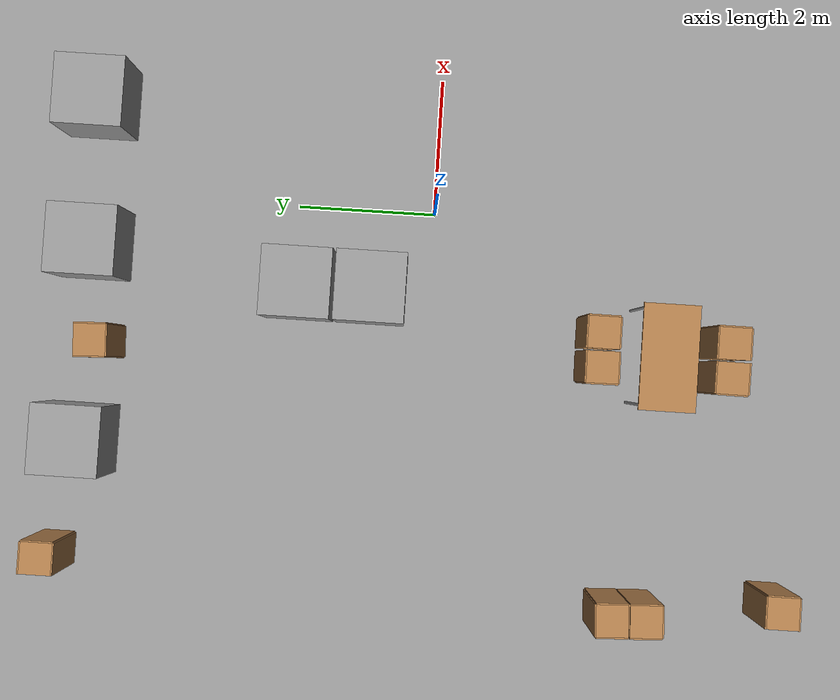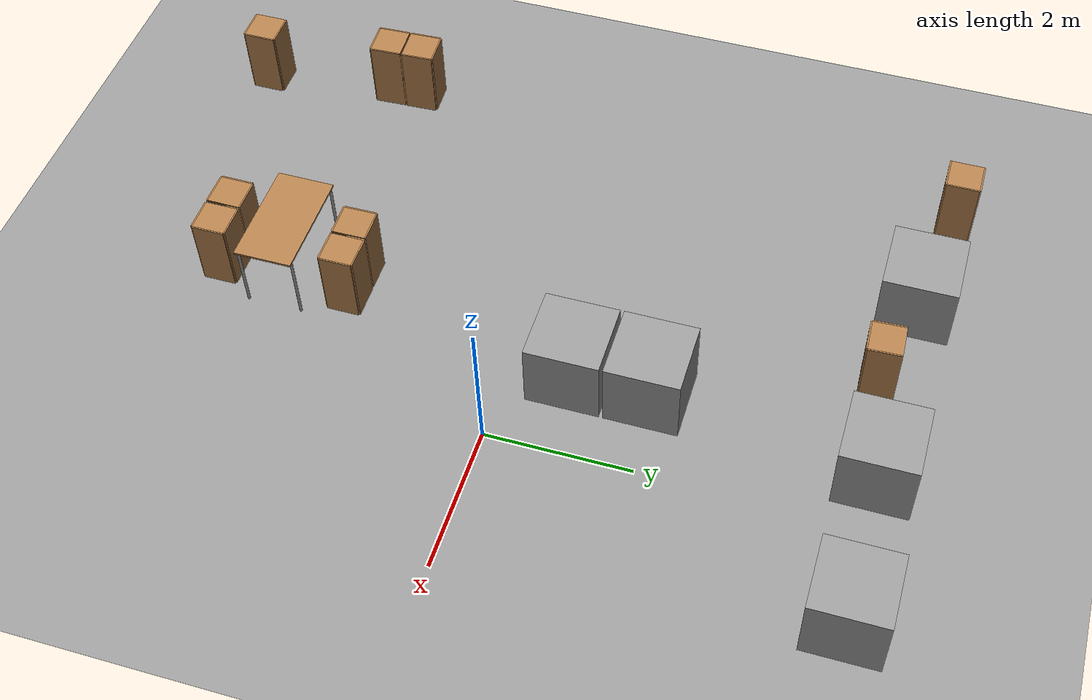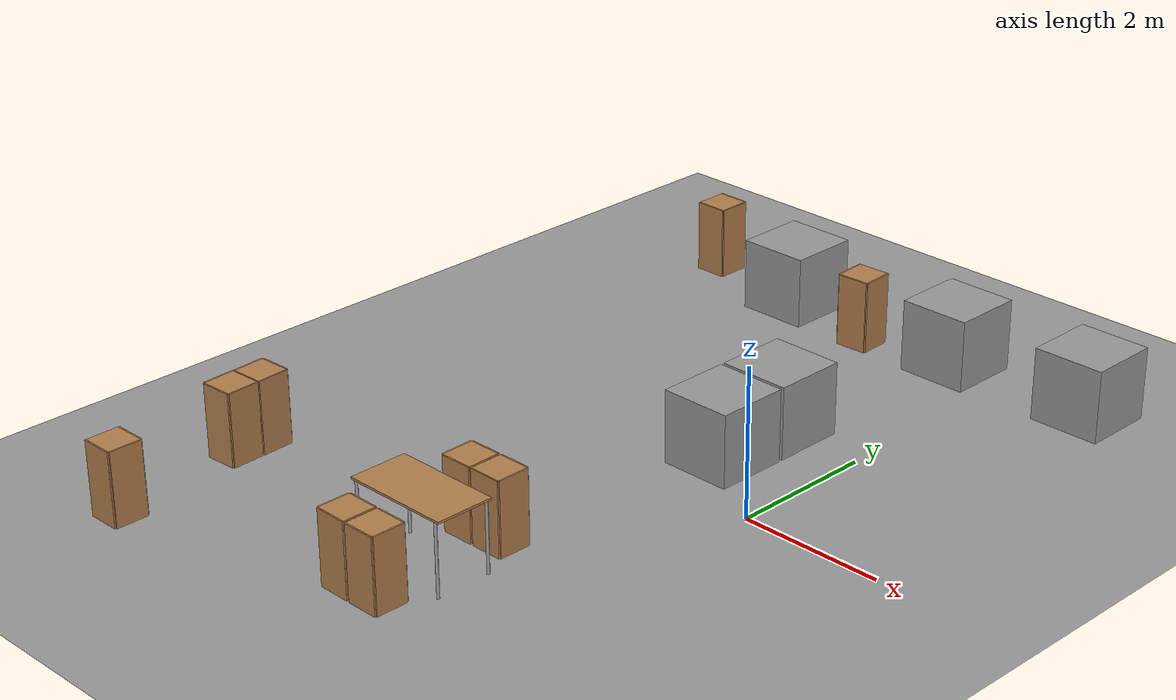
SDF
<sdf version="1.4">
 <world name="default">
  <model name="ground_plane_0">
   <static>1</static>
   <link name="link">
    <collision name="collision">
     <geometry><plane><normal>0 0 1</normal><size>100 100</size></plane></geometry>
     <surface><friction><ode><mu>100</mu><mu2>50</mu2></ode></friction></surface>
    </collision>
    <visual name="visual">
     <cast_shadows>0</cast_shadows>
     <geometry><plane><normal>0 0 1</normal><size>100 100</size></plane></geometry>
     <material>
      <script><uri>file://media/materials/scripts/gazebo.material</uri><name>Gazebo/Grey</name></script>
     </material>
    </visual>
    <velocity_decay><linear>0</linear><angular>0</angular></velocity_decay>
   </link>
   <pose>0.497681 0 0 0 -0 0</pose>
  </model>
  <model name="cabinet_0">
   <static>1</static>
   <link name="cabinet_bottom_plate">
    <inertial>
     <pose>0 0 -1 0 -0 0</pose>
     <inertia><ixx>2.05</ixx><ixy>0</ixy><ixz>0</ixz><iyy>2.05</iyy><iyz>0</iyz><izz>2.05</izz></inertia>
     <mass>25</mass>
    </inertial>
    <collision name="cabinet_bottom_plate_geom">
     <pose>0 0 0.01 0 -0 0</pose>
     <geometry><box><size>0.45 0.45 0.02</size></box></geometry>
    </collision>
    <visual name="cabinet_bottom_plate_geom_visual">
     <pose>0 0 0.01 0 -0 0</pose>
     <geometry><box><size>0.45 0.45 0.02</size></box></geometry>
     <material>
      <script><uri>file://media/materials/scripts/gazebo.material</uri><name>Gazebo/Wood</name></script>
     </material>
    </visual>
    <collision name="cabinet_bottom_plate_geom_cabinet_back_plate">
     <pose>0.235 0 0.51 0 -0 0</pose>
     <geometry><box><size>0.02 0.45 1.02</size></box></geometry>
    </collision>
    <visual name="cabinet_bottom_plate_geom_cabinet_back_plate_visual">
     <pose>0.235 0 0.51 0 -0 0</pose>
     <geometry><box><size>0.02 0.45 1.02</size></box></geometry>
     <material>
      <script><uri>file://media/materials/scripts/gazebo.material</uri><name>Gazebo/Wood</name></script>
     </material>
    </visual>
    <collision name="cabinet_bottom_plate_geom_cabinet_left_plate">
     <pose>0 0.235 0.51 0 -0 0</pose>
     <geometry><box><size>0.45 0.02 1.02</size></box></geometry>
    </collision>
    <visual name="cabinet_bottom_plate_geom_cabinet_left_plate_visual">
     <pose>0 0.235 0.51 0 -0 0</pose>
     <geometry><box><size>0.45 0.02 1.02</size></box></geometry>
     <material>
      <script><uri>file://media/materials/scripts/gazebo.material</uri><name>Gazebo/Wood</name></script>
     </material>
    </visual>
    <collision name="cabinet_bottom_plate_geom_cabinet_middle_plate">
     <pose>0 0 0.51 0 -0 0</pose>
     <geometry><box><size>0.45 0.45 0.02</size></box></geometry>
    </collision>
    <visual name="cabinet_bottom_plate_geom_cabinet_middle_plate_visual">
     <pose>0 0 0.51 0 -0 0</pose>
     <geometry><box><size>0.45 0.45 0.02</size></box></geometry>
     <material>
      <script><uri>file://media/materials/scripts/gazebo.material</uri><name>Gazebo/Wood</name></script>
     </material>
    </visual>
    <collision name="cabinet_bottom_plate_geom_cabinet_right_plate">
     <pose>0 -0.235 0.51 0 -0 0</pose>
     <geometry><box><size>0.45 0.02 1.02</size></box></geometry>
    </collision>
    <visual name="cabinet_bottom_plate_geom_cabinet_right_plate_visual">
     <pose>0 -0.235 0.51 0 -0 0</pose>
     <geometry><box><size>0.45 0.02 1.02</size></box></geometry>
     <material>
      <script><uri>file://media/materials/scripts/gazebo.material</uri><name>Gazebo/Wood</name></script>
     </material>
    </visual>
    <collision name="cabinet_bottom_plate_geom_cabinet_top_plate">
     <pose>0 0 1.01 0 -0 0</pose>
     <geometry><box><size>0.45 0.45 0.02</size></box></geometry>
    </collision>
    <visual name="cabinet_bottom_plate_geom_cabinet_top_plate_visual">
     <pose>0 0 1.01 0 -0 0</pose>
     <geometry><box><size>0.45 0.45 0.02</size></box></geometry>
     <material>
      <script><uri>file://media/materials/scripts/gazebo.material</uri><name>Gazebo/Wood</name></script>
     </material>
    </visual>
    <velocity_decay><linear>0</linear><angular>0</angular></velocity_decay>
   </link>
   <pose>-5.34383 -5.1572 0 0 -0 0</pose>
  </model>
  <model name="cabinet_1">
   <static>1</static>
   <link name="cabinet_bottom_plate">
    <inertial>
     <pose>0 0 -1 0 -0 0</pose>
     <inertia><ixx>2.05</ixx><ixy>0</ixy><ixz>0</ixz><iyy>2.05</iyy><iyz>0</iyz><izz>2.05</izz></inertia>
     <mass>25</mass>
    </inertial>
    <collision name="cabinet_bottom_plate_geom">
     <pose>0 0 0.01 0 -0 0</pose>
     <geometry><box><size>0.45 0.45 0.02</size></box></geometry>
    </collision>
    <visual name="cabinet_bottom_plate_geom_visual">
     <pose>0 0 0.01 0 -0 0</pose>
     <geometry><box><size>0.45 0.45 0.02</size></box></geometry>
     <material>
      <script><uri>file://media/materials/scripts/gazebo.material</uri><name>Gazebo/Wood</name></script>
     </material>
    </visual>
    <collision name="cabinet_bottom_plate_geom_cabinet_back_plate">
     <pose>0.235 0 0.51 0 -0 0</pose>
     <geometry><box><size>0.02 0.45 1.02</size></box></geometry>
    </collision>
    <visual name="cabinet_bottom_plate_geom_cabinet_back_plate_visual">
     <pose>0.235 0 0.51 0 -0 0</pose>
     <geometry><box><size>0.02 0.45 1.02</size></box></geometry>
     <material>
      <script><uri>file://media/materials/scripts/gazebo.material</uri><name>Gazebo/Wood</name></script>
     </material>
    </visual>
    <collision name="cabinet_bottom_plate_geom_cabinet_left_plate">
     <pose>0 0.235 0.51 0 -0 0</pose>
     <geometry><box><size>0.45 0.02 1.02</size></box></geometry>
    </collision>
    <visual name="cabinet_bottom_plate_geom_cabinet_left_plate_visual">
     <pose>0 0.235 0.51 0 -0 0</pose>
     <geometry><box><size>0.45 0.02 1.02</size></box></geometry>
     <material>
      <script><uri>file://media/materials/scripts/gazebo.material</uri><name>Gazebo/Wood</name></script>
     </material>
    </visual>
    <collision name="cabinet_bottom_plate_geom_cabinet_middle_plate">
     <pose>0 0 0.51 0 -0 0</pose>
     <geometry><box><size>0.45 0.45 0.02</size></box></geometry>
    </collision>
    <visual name="cabinet_bottom_plate_geom_cabinet_middle_plate_visual">
     <pose>0 0 0.51 0 -0 0</pose>
     <geometry><box><size>0.45 0.45 0.02</size></box></geometry>
     <material>
      <script><uri>file://media/materials/scripts/gazebo.material</uri><name>Gazebo/Wood</name></script>
     </material>
    </visual>
    <collision name="cabinet_bottom_plate_geom_cabinet_right_plate">
     <pose>0 -0.235 0.51 0 -0 0</pose>
     <geometry><box><size>0.45 0.02 1.02</size></box></geometry>
    </collision>
    <visual name="cabinet_bottom_plate_geom_cabinet_right_plate_visual">
     <pose>0 -0.235 0.51 0 -0 0</pose>
     <geometry><box><size>0.45 0.02 1.02</size></box></geometry>
     <material>
      <script><uri>file://media/materials/scripts/gazebo.material</uri><name>Gazebo/Wood</name></script>
     </material>
    </visual>
    <collision name="cabinet_bottom_plate_geom_cabinet_top_plate">
     <pose>0 0 1.01 0 -0 0</pose>
     <geometry><box><size>0.45 0.45 0.02</size></box></geometry>
    </collision>
    <visual name="cabinet_bottom_plate_geom_cabinet_top_plate_visual">
     <pose>0 0 1.01 0 -0 0</pose>
     <geometry><box><size>0.45 0.45 0.02</size></box></geometry>
     <material>
      <script><uri>file://media/materials/scripts/gazebo.material</uri><name>Gazebo/Wood</name></script>
     </material>
    </visual>
    <velocity_decay><linear>0</linear><angular>0</angular></velocity_decay>
   </link>
   <pose>-5.57746 -3.27376 0 0 0 -1.5274</pose>
  </model>
  <model name="cabinet_2">
   <static>1</static>
   <link name="cabinet_bottom_plate">
    <inertial>
     <pose>0 0 -1 0 -0 0</pose>
     <inertia><ixx>2.05</ixx><ixy>0</ixy><ixz>0</ixz><iyy>2.05</iyy><iyz>0</iyz><izz>2.05</izz></inertia>
     <mass>25</mass>
    </inertial>
    <collision name="cabinet_bottom_plate_geom">
     <pose>0 0 0.01 0 -0 0</pose>
     <geometry><box><size>0.45 0.45 0.02</size></box></geometry>
    </collision>
    <visual name="cabinet_bottom_plate_geom_visual">
     <pose>0 0 0.01 0 -0 0</pose>
     <geometry><box><size>0.45 0.45 0.02</size></box></geometry>
     <material>
      <script><uri>file://media/materials/scripts/gazebo.material</uri><name>Gazebo/Wood</name></script>
     </material>
    </visual>
    <collision name="cabinet_bottom_plate_geom_cabinet_back_plate">
     <pose>0.235 0 0.51 0 -0 0</pose>
     <geometry><box><size>0.02 0.45 1.02</size></box></geometry>
    </collision>
    <visual name="cabinet_bottom_plate_geom_cabinet_back_plate_visual">
     <pose>0.235 0 0.51 0 -0 0</pose>
     <geometry><box><size>0.02 0.45 1.02</size></box></geometry>
     <material>
      <script><uri>file://media/materials/scripts/gazebo.material</uri><name>Gazebo/Wood</name></script>
     </material>
    </visual>
    <collision name="cabinet_bottom_plate_geom_cabinet_left_plate">
     <pose>0 0.235 0.51 0 -0 0</pose>
     <geometry><box><size>0.45 0.02 1.02</size></box></geometry>
    </collision>
    <visual name="cabinet_bottom_plate_geom_cabinet_left_plate_visual">
     <pose>0 0.235 0.51 0 -0 0</pose>
     <geometry><box><size>0.45 0.02 1.02</size></box></geometry>
     <material>
      <script><uri>file://media/materials/scripts/gazebo.material</uri><name>Gazebo/Wood</name></script>
     </material>
    </visual>
    <collision name="cabinet_bottom_plate_geom_cabinet_middle_plate">
     <pose>0 0 0.51 0 -0 0</pose>
     <geometry><box><size>0.45 0.45 0.02</size></box></geometry>
    </collision>
    <visual name="cabinet_bottom_plate_geom_cabinet_middle_plate_visual">
     <pose>0 0 0.51 0 -0 0</pose>
     <geometry><box><size>0.45 0.45 0.02</size></box></geometry>
     <material>
      <script><uri>file://media/materials/scripts/gazebo.material</uri><name>Gazebo/Wood</name></script>
     </material>
    </visual>
    <collision name="cabinet_bottom_plate_geom_cabinet_right_plate">
     <pose>0 -0.235 0.51 0 -0 0</pose>
     <geometry><box><size>0.45 0.02 1.02</size></box></geometry>
    </collision>
    <visual name="cabinet_bottom_plate_geom_cabinet_right_plate_visual">
     <pose>0 -0.235 0.51 0 -0 0</pose>
     <geometry><box><size>0.45 0.02 1.02</size></box></geometry>
     <material>
      <script><uri>file://media/materials/scripts/gazebo.material</uri><name>Gazebo/Wood</name></script>
     </material>
    </visual>
    <collision name="cabinet_bottom_plate_geom_cabinet_top_plate">
     <pose>0 0 1.01 0 -0 0</pose>
     <geometry><box><size>0.45 0.45 0.02</size></box></geometry>
    </collision>
    <visual name="cabinet_bottom_plate_geom_cabinet_top_plate_visual">
     <pose>0 0 1.01 0 -0 0</pose>
     <geometry><box><size>0.45 0.45 0.02</size></box></geometry>
     <material>
      <script><uri>file://media/materials/scripts/gazebo.material</uri><name>Gazebo/Wood</name></script>
     </material>
    </visual>
    <velocity_decay><linear>0</linear><angular>0</angular></velocity_decay>
   </link>
   <pose>-5.59482 -2.80227 0 0 -0 1.61682</pose>
  </model>
  <model name="cabinet_5">
   <static>1</static>
   <link name="cabinet_bottom_plate">
    <inertial>
     <pose>0 0 -1 0 -0 0</pose>
     <inertia><ixx>2.05</ixx><ixy>0</ixy><ixz>0</ixz><iyy>2.05</iyy><iyz>0</iyz><izz>2.05</izz></inertia>
     <mass>25</mass>
    </inertial>
    <collision name="cabinet_bottom_plate_geom">
     <pose>0 0 0.01 0 -0 0</pose>
     <geometry><box><size>0.45 0.45 0.02</size></box></geometry>
    </collision>
    <visual name="cabinet_bottom_plate_geom_visual">
     <pose>0 0 0.01 0 -0 0</pose>
     <geometry><box><size>0.45 0.45 0.02</size></box></geometry>
     <material>
      <script><uri>file://media/materials/scripts/gazebo.material</uri><name>Gazebo/Wood</name></script>
     </material>
    </visual>
    <collision name="cabinet_bottom_plate_geom_cabinet_back_plate">
     <pose>0.235 0 0.51 0 -0 0</pose>
     <geometry><box><size>0.02 0.45 1.02</size></box></geometry>
    </collision>
    <visual name="cabinet_bottom_plate_geom_cabinet_back_plate_visual">
     <pose>0.235 0 0.51 0 -0 0</pose>
     <geometry><box><size>0.02 0.45 1.02</size></box></geometry>
     <material>
      <script><uri>file://media/materials/scripts/gazebo.material</uri><name>Gazebo/Wood</name></script>
     </material>
    </visual>
    <collision name="cabinet_bottom_plate_geom_cabinet_left_plate">
     <pose>0 0.235 0.51 0 -0 0</pose>
     <geometry><box><size>0.45 0.02 1.02</size></box></geometry>
    </collision>
    <visual name="cabinet_bottom_plate_geom_cabinet_left_plate_visual">
     <pose>0 0.235 0.51 0 -0 0</pose>
     <geometry><box><size>0.45 0.02 1.02</size></box></geometry>
     <material>
      <script><uri>file://media/materials/scripts/gazebo.material</uri><name>Gazebo/Wood</name></script>
     </material>
    </visual>
    <collision name="cabinet_bottom_plate_geom_cabinet_middle_plate">
     <pose>0 0 0.51 0 -0 0</pose>
     <geometry><box><size>0.45 0.45 0.02</size></box></geometry>
    </collision>
    <visual name="cabinet_bottom_plate_geom_cabinet_middle_plate_visual">
     <pose>0 0 0.51 0 -0 0</pose>
     <geometry><box><size>0.45 0.45 0.02</size></box></geometry>
     <material>
      <script><uri>file://media/materials/scripts/gazebo.material</uri><name>Gazebo/Wood</name></script>
     </material>
    </visual>
    <collision name="cabinet_bottom_plate_geom_cabinet_right_plate">
     <pose>0 -0.235 0.51 0 -0 0</pose>
     <geometry><box><size>0.45 0.02 1.02</size></box></geometry>
    </collision>
    <visual name="cabinet_bottom_plate_geom_cabinet_right_plate_visual">
     <pose>0 -0.235 0.51 0 -0 0</pose>
     <geometry><box><size>0.45 0.02 1.02</size></box></geometry>
     <material>
      <script><uri>file://media/materials/scripts/gazebo.material</uri><name>Gazebo/Wood</name></script>
     </material>
    </visual>
    <collision name="cabinet_bottom_plate_geom_cabinet_top_plate">
     <pose>0 0 1.01 0 -0 0</pose>
     <geometry><box><size>0.45 0.45 0.02</size></box></geometry>
    </collision>
    <visual name="cabinet_bottom_plate_geom_cabinet_top_plate_visual">
     <pose>0 0 1.01 0 -0 0</pose>
     <geometry><box><size>0.45 0.45 0.02</size></box></geometry>
     <material>
      <script><uri>file://media/materials/scripts/gazebo.material</uri><name>Gazebo/Wood</name></script>
     </material>
    </visual>
    <velocity_decay><linear>0</linear><angular>0</angular></velocity_decay>
   </link>
   <pose>-2.13888 -4.27539 0 0 -0 3.13178</pose>
  </model>
  <model name="cabinet_6">
   <static>1</static>
   <link name="cabinet_bottom_plate">
    <inertial>
     <pose>0 0 -1 0 -0 0</pose>
     <inertia><ixx>2.05</ixx><ixy>0</ixy><ixz>0</ixz><iyy>2.05</iyy><iyz>0</iyz><izz>2.05</izz></inertia>
     <mass>25</mass>
    </inertial>
    <collision name="cabinet_bottom_plate_geom">
     <pose>0 0 0.01 0 -0 0</pose>
     <geometry><box><size>0.45 0.45 0.02</size></box></geometry>
    </collision>
    <visual name="cabinet_bottom_plate_geom_visual">
     <pose>0 0 0.01 0 -0 0</pose>
     <geometry><box><size>0.45 0.45 0.02</size></box></geometry>
     <material>
      <script><uri>file://media/materials/scripts/gazebo.material</uri><name>Gazebo/Wood</name></script>
     </material>
    </visual>
    <collision name="cabinet_bottom_plate_geom_cabinet_back_plate">
     <pose>0.235 0 0.51 0 -0 0</pose>
     <geometry><box><size>0.02 0.45 1.02</size></box></geometry>
    </collision>
    <visual name="cabinet_bottom_plate_geom_cabinet_back_plate_visual">
     <pose>0.235 0 0.51 0 -0 0</pose>
     <geometry><box><size>0.02 0.45 1.02</size></box></geometry>
     <material>
      <script><uri>file://media/materials/scripts/gazebo.material</uri><name>Gazebo/Wood</name></script>
     </material>
    </visual>
    <collision name="cabinet_bottom_plate_geom_cabinet_left_plate">
     <pose>0 0.235 0.51 0 -0 0</pose>
     <geometry><box><size>0.45 0.02 1.02</size></box></geometry>
    </collision>
    <visual name="cabinet_bottom_plate_geom_cabinet_left_plate_visual">
     <pose>0 0.235 0.51 0 -0 0</pose>
     <geometry><box><size>0.45 0.02 1.02</size></box></geometry>
     <material>
      <script><uri>file://media/materials/scripts/gazebo.material</uri><name>Gazebo/Wood</name></script>
     </material>
    </visual>
    <collision name="cabinet_bottom_plate_geom_cabinet_middle_plate">
     <pose>0 0 0.51 0 -0 0</pose>
     <geometry><box><size>0.45 0.45 0.02</size></box></geometry>
    </collision>
    <visual name="cabinet_bottom_plate_geom_cabinet_middle_plate_visual">
     <pose>0 0 0.51 0 -0 0</pose>
     <geometry><box><size>0.45 0.45 0.02</size></box></geometry>
     <material>
      <script><uri>file://media/materials/scripts/gazebo.material</uri><name>Gazebo/Wood</name></script>
     </material>
    </visual>
    <collision name="cabinet_bottom_plate_geom_cabinet_right_plate">
     <pose>0 -0.235 0.51 0 -0 0</pose>
     <geometry><box><size>0.45 0.02 1.02</size></box></geometry>
    </collision>
    <visual name="cabinet_bottom_plate_geom_cabinet_right_plate_visual">
     <pose>0 -0.235 0.51 0 -0 0</pose>
     <geometry><box><size>0.45 0.02 1.02</size></box></geometry>
     <material>
      <script><uri>file://media/materials/scripts/gazebo.material</uri><name>Gazebo/Wood</name></script>
     </material>
    </visual>
    <collision name="cabinet_bottom_plate_geom_cabinet_top_plate">
     <pose>0 0 1.01 0 -0 0</pose>
     <geometry><box><size>0.45 0.45 0.02</size></box></geometry>
    </collision>
    <visual name="cabinet_bottom_plate_geom_cabinet_top_plate_visual">
     <pose>0 0 1.01 0 -0 0</pose>
     <geometry><box><size>0.45 0.45 0.02</size></box></geometry>
     <material>
      <script><uri>file://media/materials/scripts/gazebo.material</uri><name>Gazebo/Wood</name></script>
     </material>
    </visual>
    <velocity_decay><linear>0</linear><angular>0</angular></velocity_decay>
   </link>
   <pose>-1.65312 -4.27891 0 0 -0 0</pose>
  </model>
  <model name="cabinet_7">
   <static>1</static>
   <link name="cabinet_bottom_plate">
    <inertial>
     <pose>0 0 -1 0 -0 0</pose>
     <inertia><ixx>2.05</ixx><ixy>0</ixy><ixz>0</ixz><iyy>2.05</iyy><iyz>0</iyz><izz>2.05</izz></inertia>
     <mass>25</mass>
    </inertial>
    <collision name="cabinet_bottom_plate_geom">
     <pose>0 0 0.01 0 -0 0</pose>
     <geometry><box><size>0.45 0.45 0.02</size></box></geometry>
    </collision>
    <visual name="cabinet_bottom_plate_geom_visual">
     <pose>0 0 0.01 0 -0 0</pose>
     <geometry><box><size>0.45 0.45 0.02</size></box></geometry>
     <material>
      <script><uri>file://media/materials/scripts/gazebo.material</uri><name>Gazebo/Wood</name></script>
     </material>
    </visual>
    <collision name="cabinet_bottom_plate_geom_cabinet_back_plate">
     <pose>0.235 0 0.51 0 -0 0</pose>
     <geometry><box><size>0.02 0.45 1.02</size></box></geometry>
    </collision>
    <visual name="cabinet_bottom_plate_geom_cabinet_back_plate_visual">
     <pose>0.235 0 0.51 0 -0 0</pose>
     <geometry><box><size>0.02 0.45 1.02</size></box></geometry>
     <material>
      <script><uri>file://media/materials/scripts/gazebo.material</uri><name>Gazebo/Wood</name></script>
     </material>
    </visual>
    <collision name="cabinet_bottom_plate_geom_cabinet_left_plate">
     <pose>0 0.235 0.51 0 -0 0</pose>
     <geometry><box><size>0.45 0.02 1.02</size></box></geometry>
    </collision>
    <visual name="cabinet_bottom_plate_geom_cabinet_left_plate_visual">
     <pose>0 0.235 0.51 0 -0 0</pose>
     <geometry><box><size>0.45 0.02 1.02</size></box></geometry>
     <material>
      <script><uri>file://media/materials/scripts/gazebo.material</uri><name>Gazebo/Wood</name></script>
     </material>
    </visual>
    <collision name="cabinet_bottom_plate_geom_cabinet_middle_plate">
     <pose>0 0 0.51 0 -0 0</pose>
     <geometry><box><size>0.45 0.45 0.02</size></box></geometry>
    </collision>
    <visual name="cabinet_bottom_plate_geom_cabinet_middle_plate_visual">
     <pose>0 0 0.51 0 -0 0</pose>
     <geometry><box><size>0.45 0.45 0.02</size></box></geometry>
     <material>
      <script><uri>file://media/materials/scripts/gazebo.material</uri><name>Gazebo/Wood</name></script>
     </material>
    </visual>
    <collision name="cabinet_bottom_plate_geom_cabinet_right_plate">
     <pose>0 -0.235 0.51 0 -0 0</pose>
     <geometry><box><size>0.45 0.02 1.02</size></box></geometry>
    </collision>
    <visual name="cabinet_bottom_plate_geom_cabinet_right_plate_visual">
     <pose>0 -0.235 0.51 0 -0 0</pose>
     <geometry><box><size>0.45 0.02 1.02</size></box></geometry>
     <material>
      <script><uri>file://media/materials/scripts/gazebo.material</uri><name>Gazebo/Wood</name></script>
     </material>
    </visual>
    <collision name="cabinet_bottom_plate_geom_cabinet_top_plate">
     <pose>0 0 1.01 0 -0 0</pose>
     <geometry><box><size>0.45 0.45 0.02</size></box></geometry>
    </collision>
    <visual name="cabinet_bottom_plate_geom_cabinet_top_plate_visual">
     <pose>0 0 1.01 0 -0 0</pose>
     <geometry><box><size>0.45 0.45 0.02</size></box></geometry>
     <material>
      <script><uri>file://media/materials/scripts/gazebo.material</uri><name>Gazebo/Wood</name></script>
     </material>
    </visual>
    <velocity_decay><linear>0</linear><angular>0</angular></velocity_decay>
   </link>
   <pose>-2.09881 -2.45928 0 0 0 -3.12859</pose>
  </model>
  <model name="cabinet_8">
   <static>1</static>
   <link name="cabinet_bottom_plate">
    <inertial>
     <pose>0 0 -1 0 -0 0</pose>
     <inertia><ixx>2.05</ixx><ixy>0</ixy><ixz>0</ixz><iyy>2.05</iyy><iyz>0</iyz><izz>2.05</izz></inertia>
     <mass>25</mass>
    </inertial>
    <collision name="cabinet_bottom_plate_geom">
     <pose>0 0 0.01 0 -0 0</pose>
     <geometry><box><size>0.45 0.45 0.02</size></box></geometry>
    </collision>
    <visual name="cabinet_bottom_plate_geom_visual">
     <pose>0 0 0.01 0 -0 0</pose>
     <geometry><box><size>0.45 0.45 0.02</size></box></geometry>
     <material>
      <script><uri>file://media/materials/scripts/gazebo.material</uri><name>Gazebo/Wood</name></script>
     </material>
    </visual>
    <collision name="cabinet_bottom_plate_geom_cabinet_back_plate">
     <pose>0.235 0 0.51 0 -0 0</pose>
     <geometry><box><size>0.02 0.45 1.02</size></box></geometry>
    </collision>
    <visual name="cabinet_bottom_plate_geom_cabinet_back_plate_visual">
     <pose>0.235 0 0.51 0 -0 0</pose>
     <geometry><box><size>0.02 0.45 1.02</size></box></geometry>
     <material>
      <script><uri>file://media/materials/scripts/gazebo.material</uri><name>Gazebo/Wood</name></script>
     </material>
    </visual>
    <collision name="cabinet_bottom_plate_geom_cabinet_left_plate">
     <pose>0 0.235 0.51 0 -0 0</pose>
     <geometry><box><size>0.45 0.02 1.02</size></box></geometry>
    </collision>
    <visual name="cabinet_bottom_plate_geom_cabinet_left_plate_visual">
     <pose>0 0.235 0.51 0 -0 0</pose>
     <geometry><box><size>0.45 0.02 1.02</size></box></geometry>
     <material>
      <script><uri>file://media/materials/scripts/gazebo.material</uri><name>Gazebo/Wood</name></script>
     </material>
    </visual>
    <collision name="cabinet_bottom_plate_geom_cabinet_middle_plate">
     <pose>0 0 0.51 0 -0 0</pose>
     <geometry><box><size>0.45 0.45 0.02</size></box></geometry>
    </collision>
    <visual name="cabinet_bottom_plate_geom_cabinet_middle_plate_visual">
     <pose>0 0 0.51 0 -0 0</pose>
     <geometry><box><size>0.45 0.45 0.02</size></box></geometry>
     <material>
      <script><uri>file://media/materials/scripts/gazebo.material</uri><name>Gazebo/Wood</name></script>
     </material>
    </visual>
    <collision name="cabinet_bottom_plate_geom_cabinet_right_plate">
     <pose>0 -0.235 0.51 0 -0 0</pose>
     <geometry><box><size>0.45 0.02 1.02</size></box></geometry>
    </collision>
    <visual name="cabinet_bottom_plate_geom_cabinet_right_plate_visual">
     <pose>0 -0.235 0.51 0 -0 0</pose>
     <geometry><box><size>0.45 0.02 1.02</size></box></geometry>
     <material>
      <script><uri>file://media/materials/scripts/gazebo.material</uri><name>Gazebo/Wood</name></script>
     </material>
    </visual>
    <collision name="cabinet_bottom_plate_geom_cabinet_top_plate">
     <pose>0 0 1.01 0 -0 0</pose>
     <geometry><box><size>0.45 0.45 0.02</size></box></geometry>
    </collision>
    <visual name="cabinet_bottom_plate_geom_cabinet_top_plate_visual">
     <pose>0 0 1.01 0 -0 0</pose>
     <geometry><box><size>0.45 0.45 0.02</size></box></geometry>
     <material>
      <script><uri>file://media/materials/scripts/gazebo.material</uri><name>Gazebo/Wood</name></script>
     </material>
    </visual>
    <velocity_decay><linear>0</linear><angular>0</angular></velocity_decay>
   </link>
   <pose>-1.61386 -2.45287 0 0 -0 0</pose>
  </model>
  <model name="cabinet_9">
   <static>1</static>
   <link name="cabinet_bottom_plate">
    <inertial>
     <pose>0 0 -1 0 -0 0</pose>
     <inertia><ixx>2.05</ixx><ixy>0</ixy><ixz>0</ixz><iyy>2.05</iyy><iyz>0</iyz><izz>2.05</izz></inertia>
     <mass>25</mass>
    </inertial>
    <collision name="cabinet_bottom_plate_geom">
     <pose>0 0 0.01 0 -0 0</pose>
     <geometry><box><size>0.45 0.45 0.02</size></box></geometry>
    </collision>
    <visual name="cabinet_bottom_plate_geom_visual">
     <pose>0 0 0.01 0 -0 0</pose>
     <geometry><box><size>0.45 0.45 0.02</size></box></geometry>
     <material>
      <script><uri>file://media/materials/scripts/gazebo.material</uri><name>Gazebo/Wood</name></script>
     </material>
    </visual>
    <collision name="cabinet_bottom_plate_geom_cabinet_back_plate">
     <pose>0.235 0 0.51 0 -0 0</pose>
     <geometry><box><size>0.02 0.45 1.02</size></box></geometry>
    </collision>
    <visual name="cabinet_bottom_plate_geom_cabinet_back_plate_visual">
     <pose>0.235 0 0.51 0 -0 0</pose>
     <geometry><box><size>0.02 0.45 1.02</size></box></geometry>
     <material>
      <script><uri>file://media/materials/scripts/gazebo.material</uri><name>Gazebo/Wood</name></script>
     </material>
    </visual>
    <collision name="cabinet_bottom_plate_geom_cabinet_left_plate">
     <pose>0 0.235 0.51 0 -0 0</pose>
     <geometry><box><size>0.45 0.02 1.02</size></box></geometry>
    </collision>
    <visual name="cabinet_bottom_plate_geom_cabinet_left_plate_visual">
     <pose>0 0.235 0.51 0 -0 0</pose>
     <geometry><box><size>0.45 0.02 1.02</size></box></geometry>
     <material>
      <script><uri>file://media/materials/scripts/gazebo.material</uri><name>Gazebo/Wood</name></script>
     </material>
    </visual>
    <collision name="cabinet_bottom_plate_geom_cabinet_middle_plate">
     <pose>0 0 0.51 0 -0 0</pose>
     <geometry><box><size>0.45 0.45 0.02</size></box></geometry>
    </collision>
    <visual name="cabinet_bottom_plate_geom_cabinet_middle_plate_visual">
     <pose>0 0 0.51 0 -0 0</pose>
     <geometry><box><size>0.45 0.45 0.02</size></box></geometry>
     <material>
      <script><uri>file://media/materials/scripts/gazebo.material</uri><name>Gazebo/Wood</name></script>
     </material>
    </visual>
    <collision name="cabinet_bottom_plate_geom_cabinet_right_plate">
     <pose>0 -0.235 0.51 0 -0 0</pose>
     <geometry><box><size>0.45 0.02 1.02</size></box></geometry>
    </collision>
    <visual name="cabinet_bottom_plate_geom_cabinet_right_plate_visual">
     <pose>0 -0.235 0.51 0 -0 0</pose>
     <geometry><box><size>0.45 0.02 1.02</size></box></geometry>
     <material>
      <script><uri>file://media/materials/scripts/gazebo.material</uri><name>Gazebo/Wood</name></script>
     </material>
    </visual>
    <collision name="cabinet_bottom_plate_geom_cabinet_top_plate">
     <pose>0 0 1.01 0 -0 0</pose>
     <geometry><box><size>0.45 0.45 0.02</size></box></geometry>
    </collision>
    <visual name="cabinet_bottom_plate_geom_cabinet_top_plate_visual">
     <pose>0 0 1.01 0 -0 0</pose>
     <geometry><box><size>0.45 0.45 0.02</size></box></geometry>
     <material>
      <script><uri>file://media/materials/scripts/gazebo.material</uri><name>Gazebo/Wood</name></script>
     </material>
    </visual>
    <velocity_decay><linear>0</linear><angular>0</angular></velocity_decay>
   </link>
   <pose>-5.25555 5.22253 0 0 -0 0</pose>
  </model>
  <model name="unit_box_10_0">
   <pose>-3.60374 4.96286 0.5 0 -0 0</pose>
   <link name="link">
    <inertial>
     <mass>1</mass>
     <inertia><ixx>1</ixx><ixy>0</ixy><ixz>0</ixz><iyy>1</iyy><iyz>0</iyz><izz>1</izz></inertia>
    </inertial>
    <collision name="collision"><geometry><box><size>1 1 1</size></box></geometry></collision>
    <visual name="visual">
     <geometry><box><size>1 1 1</size></box></geometry>
     <material>
      <script><uri>file://media/materials/scripts/gazebo.material</uri><name>Gazebo/Grey</name></script>
     </material>
    </visual>
    <velocity_decay><linear>0</linear><angular>0</angular></velocity_decay>
   </link>
   <static>0</static>
  </model>
  <model name="unit_box_11_0">
   <pose>-1.17899 0.847051 0.5 0 -0 0</pose>
   <link name="link">
    <inertial>
     <mass>1</mass>
     <inertia><ixx>1</ixx><ixy>0</ixy><ixz>0</ixz><iyy>1</iyy><iyz>0</iyz><izz>1</izz></inertia>
    </inertial>
    <collision name="collision"><geometry><box><size>1 1 1</size></box></geometry></collision>
    <visual name="visual">
     <geometry><box><size>1 1 1</size></box></geometry>
     <material>
      <script><uri>file://media/materials/scripts/gazebo.material</uri><name>Gazebo/Grey</name></script>
     </material>
    </visual>
    <velocity_decay><linear>0</linear><angular>0</angular></velocity_decay>
   </link>
   <static>0</static>
  </model>
  <model name="unit_box_12_0">
   <pose>-1.17953 1.89623 0.5 0 -0 0</pose>
   <link name="link">
    <inertial>
     <mass>1</mass>
     <inertia><ixx>1</ixx><ixy>0</ixy><ixz>0</ixz><iyy>1</iyy><iyz>0</iyz><izz>1</izz></inertia>
    </inertial>
    <collision name="collision"><geometry><box><size>1 1 1</size></box></geometry></collision>
    <visual name="visual">
     <geometry><box><size>1 1 1</size></box></geometry>
     <material>
      <script><uri>file://media/materials/scripts/gazebo.material</uri><name>Gazebo/Grey</name></script>
     </material>
    </visual>
    <velocity_decay><linear>0</linear><angular>0</angular></velocity_decay>
   </link>
   <static>0</static>
  </model>
  <model name="cabinet_14">
   <static>1</static>
   <link name="cabinet_bottom_plate">
    <inertial>
     <pose>0 0 -1 0 -0 0</pose>
     <inertia><ixx>2.05</ixx><ixy>0</ixy><ixz>0</ixz><iyy>2.05</iyy><iyz>0</iyz><izz>2.05</izz></inertia>
     <mass>25</mass>
    </inertial>
    <collision name="cabinet_bottom_plate_geom">
     <pose>0 0 0.01 0 -0 0</pose>
     <geometry><box><size>0.45 0.45 0.02</size></box></geometry>
    </collision>
    <visual name="cabinet_bottom_plate_geom_visual">
     <pose>0 0 0.01 0 -0 0</pose>
     <geometry><box><size>0.45 0.45 0.02</size></box></geometry>
     <material>
      <script><uri>file://media/materials/scripts/gazebo.material</uri><name>Gazebo/Wood</name></script>
     </material>
    </visual>
    <collision name="cabinet_bottom_plate_geom_cabinet_back_plate">
     <pose>0.235 0 0.51 0 -0 0</pose>
     <geometry><box><size>0.02 0.45 1.02</size></box></geometry>
    </collision>
    <visual name="cabinet_bottom_plate_geom_cabinet_back_plate_visual">
     <pose>0.235 0 0.51 0 -0 0</pose>
     <geometry><box><size>0.02 0.45 1.02</size></box></geometry>
     <material>
      <script><uri>file://media/materials/scripts/gazebo.material</uri><name>Gazebo/Wood</name></script>
     </material>
    </visual>
    <collision name="cabinet_bottom_plate_geom_cabinet_left_plate">
     <pose>0 0.235 0.51 0 -0 0</pose>
     <geometry><box><size>0.45 0.02 1.02</size></box></geometry>
    </collision>
    <visual name="cabinet_bottom_plate_geom_cabinet_left_plate_visual">
     <pose>0 0.235 0.51 0 -0 0</pose>
     <geometry><box><size>0.45 0.02 1.02</size></box></geometry>
     <material>
      <script><uri>file://media/materials/scripts/gazebo.material</uri><name>Gazebo/Wood</name></script>
     </material>
    </visual>
    <collision name="cabinet_bottom_plate_geom_cabinet_middle_plate">
     <pose>0 0 0.51 0 -0 0</pose>
     <geometry><box><size>0.45 0.45 0.02</size></box></geometry>
    </collision>
    <visual name="cabinet_bottom_plate_geom_cabinet_middle_plate_visual">
     <pose>0 0 0.51 0 -0 0</pose>
     <geometry><box><size>0.45 0.45 0.02</size></box></geometry>
     <material>
      <script><uri>file://media/materials/scripts/gazebo.material</uri><name>Gazebo/Wood</name></script>
     </material>
    </visual>
    <collision name="cabinet_bottom_plate_geom_cabinet_right_plate">
     <pose>0 -0.235 0.51 0 -0 0</pose>
     <geometry><box><size>0.45 0.02 1.02</size></box></geometry>
    </collision>
    <visual name="cabinet_bottom_plate_geom_cabinet_right_plate_visual">
     <pose>0 -0.235 0.51 0 -0 0</pose>
     <geometry><box><size>0.45 0.02 1.02</size></box></geometry>
     <material>
      <script><uri>file://media/materials/scripts/gazebo.material</uri><name>Gazebo/Wood</name></script>
     </material>
    </visual>
    <collision name="cabinet_bottom_plate_geom_cabinet_top_plate">
     <pose>0 0 1.01 0 -0 0</pose>
     <geometry><box><size>0.45 0.45 0.02</size></box></geometry>
    </collision>
    <visual name="cabinet_bottom_plate_geom_cabinet_top_plate_visual">
     <pose>0 0 1.01 0 -0 0</pose>
     <geometry><box><size>0.45 0.45 0.02</size></box></geometry>
     <material>
      <script><uri>file://media/materials/scripts/gazebo.material</uri><name>Gazebo/Wood</name></script>
     </material>
    </visual>
    <velocity_decay><linear>0</linear><angular>0</angular></velocity_decay>
   </link>
   <pose>-2.18087 4.69647 0 0 0 -1.52811</pose>
  </model>
  <model name="unit_box_13_0">
   <pose>-0.774982 4.93941 0.5 0 -0 0</pose>
   <link name="link">
    <inertial>
     <mass>1</mass>
     <inertia><ixx>1</ixx><ixy>0</ixy><ixz>0</ixz><iyy>1</iyy><iyz>0</iyz><izz>1</izz></inertia>
    </inertial>
    <collision name="collision"><geometry><box><size>1 1 1</size></box></geometry></collision>
    <visual name="visual">
     <geometry><box><size>1 1 1</size></box></geometry>
     <material>
      <script><uri>file://media/materials/scripts/gazebo.material</uri><name>Gazebo/Grey</name></script>
     </material>
    </visual>
    <velocity_decay><linear>0</linear><angular>0</angular></velocity_decay>
   </link>
   <static>0</static>
  </model>
  <model name="unit_box_15_0">
   <pose>1.32532 4.97893 0.5 0 -0 0</pose>
   <link name="link">
    <inertial>
     <mass>1</mass>
     <inertia><ixx>1</ixx><ixy>0</ixy><ixz>0</ixz><iyy>1</iyy><iyz>0</iyz><izz>1</izz></inertia>
    </inertial>
    <collision name="collision"><geometry><box><size>1 1 1</size></box></geometry></collision>
    <visual name="visual">
     <geometry><box><size>1 1 1</size></box></geometry>
     <material>
      <script><uri>file://media/materials/scripts/gazebo.material</uri><name>Gazebo/Grey</name></script>
     </material>
    </visual>
    <velocity_decay><linear>0</linear><angular>0</angular></velocity_decay>
   </link>
   <static>0</static>
  </model>
  <model name="table">
   <static>1</static>
   <link name="link">
    <collision name="surface">
     <pose>0 0 1 0 -0 0</pose>
     <geometry><box><size>1.5 0.8 0.03</size></box></geometry>
     <surface><friction><ode><mu>0.6</mu><mu2>0.6</mu2></ode></friction></surface>
    </collision>
    <visual name="visual1">
     <pose>0 0 1 0 -0 0</pose>
     <geometry><box><size>1.5 0.8 0.03</size></box></geometry>
     <material>
      <script><uri>file://media/materials/scripts/gazebo.material</uri><name>Gazebo/Wood</name></script>
     </material>
    </visual>
    <collision name="front_left_leg">
     <pose>0.68 0.38 0.5 0 -0 0</pose>
     <geometry><cylinder><radius>0.02</radius><length>1</length></cylinder></geometry>
    </collision>
    <visual name="front_left_leg">
     <pose>0.68 0.38 0.5 0 -0 0</pose>
     <geometry><cylinder><radius>0.02</radius><length>1</length></cylinder></geometry>
     <material>
      <script><uri>file://media/materials/scripts/gazebo.material</uri><name>Gazebo/Grey</name></script>
     </material>
    </visual>
    <collision name="front_right_leg">
     <pose>0.68 -0.38 0.5 0 -0 0</pose>
     <geometry><cylinder><radius>0.02</radius><length>1</length></cylinder></geometry>
    </collision>
    <visual name="front_right_leg">
     <pose>0.68 -0.38 0.5 0 -0 0</pose>
     <geometry><cylinder><radius>0.02</radius><length>1</length></cylinder></geometry>
     <material>
      <script><uri>file://media/materials/scripts/gazebo.material</uri><name>Gazebo/Grey</name></script>
     </material>
    </visual>
    <collision name="back_right_leg">
     <pose>-0.68 -0.38 0.5 0 -0 0</pose>
     <geometry><cylinder><radius>0.02</radius><length>1</length></cylinder></geometry>
    </collision>
    <visual name="back_right_leg">
     <pose>-0.68 -0.38 0.5 0 -0 0</pose>
     <geometry><cylinder><radius>0.02</radius><length>1</length></cylinder></geometry>
     <material>
      <script><uri>file://media/materials/scripts/gazebo.material</uri><name>Gazebo/Grey</name></script>
     </material>
    </visual>
    <collision name="back_left_leg">
     <pose>-0.68 0.38 0.5 0 -0 0</pose>
     <geometry><cylinder><radius>0.02</radius><length>1</length></cylinder></geometry>
    </collision>
    <visual name="back_left_leg">
     <pose>-0.68 0.38 0.5 0 -0 0</pose>
     <geometry><cylinder><radius>0.02</radius><length>1</length></cylinder></geometry>
     <material>
      <script><uri>file://media/materials/scripts/gazebo.material</uri><name>Gazebo/Grey</name></script>
     </material>
    </visual>
    <velocity_decay><linear>0</linear><angular>0</angular></velocity_decay>
   </link>
   <pose>-1.90953 -3.38527 0 0 -0 0</pose>
  </model>
 </world>
</sdf>
